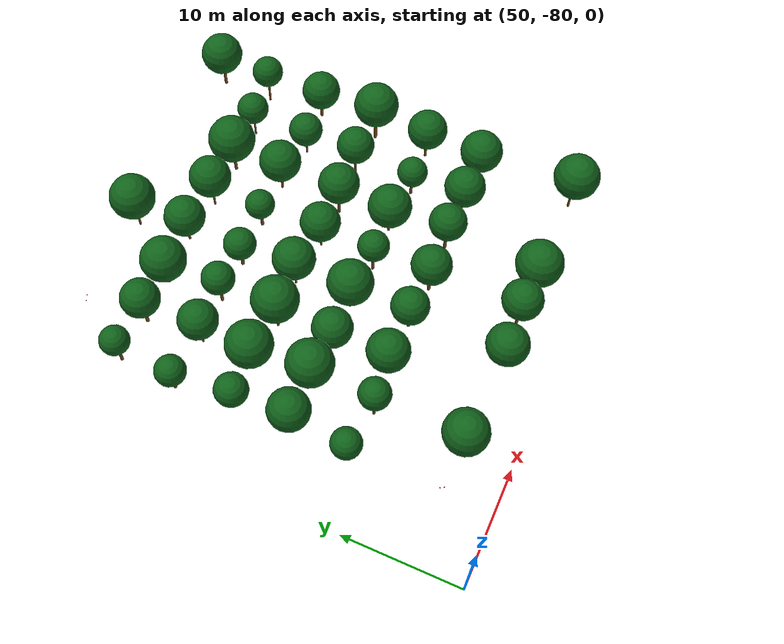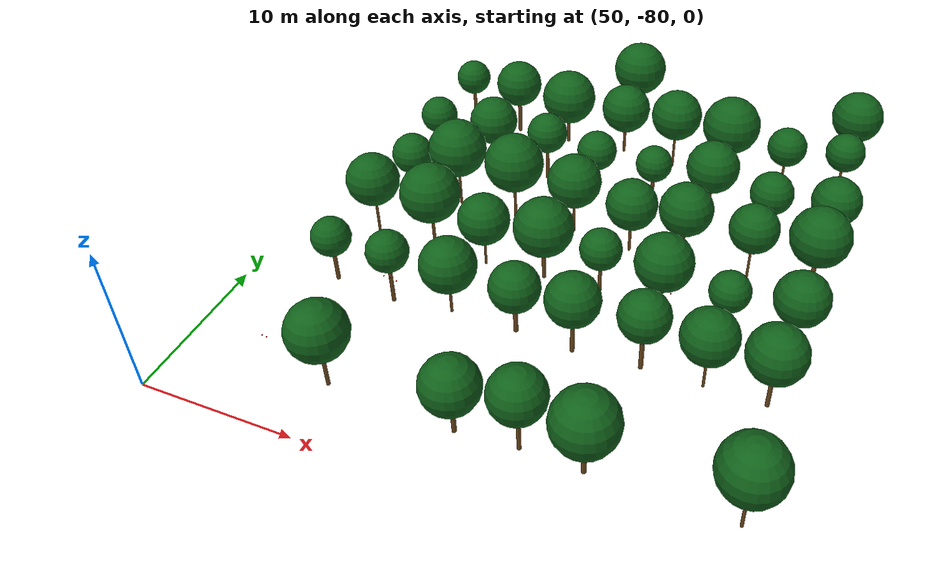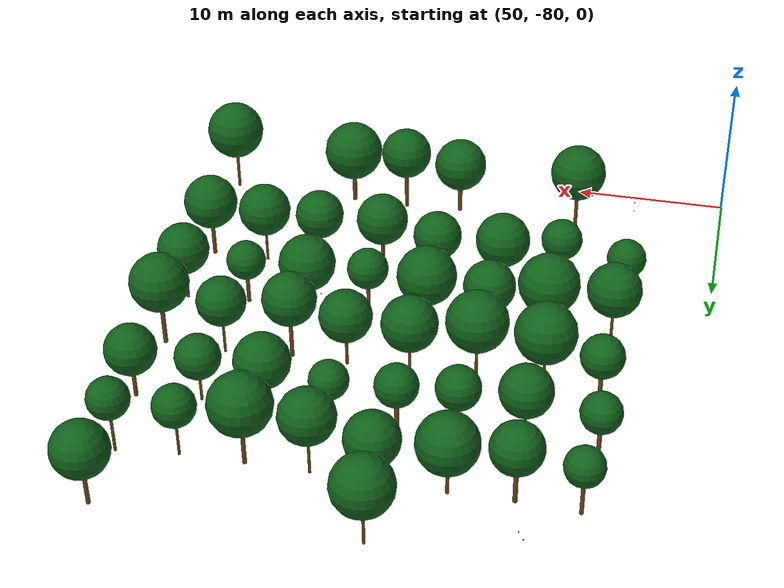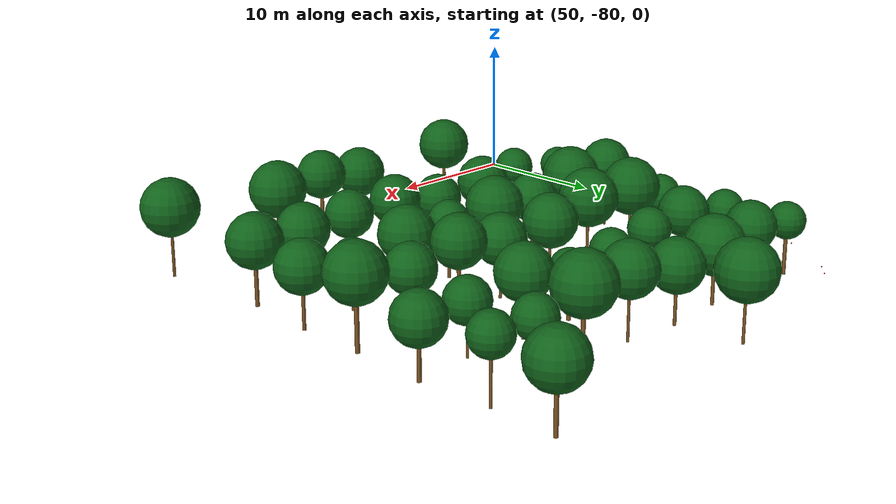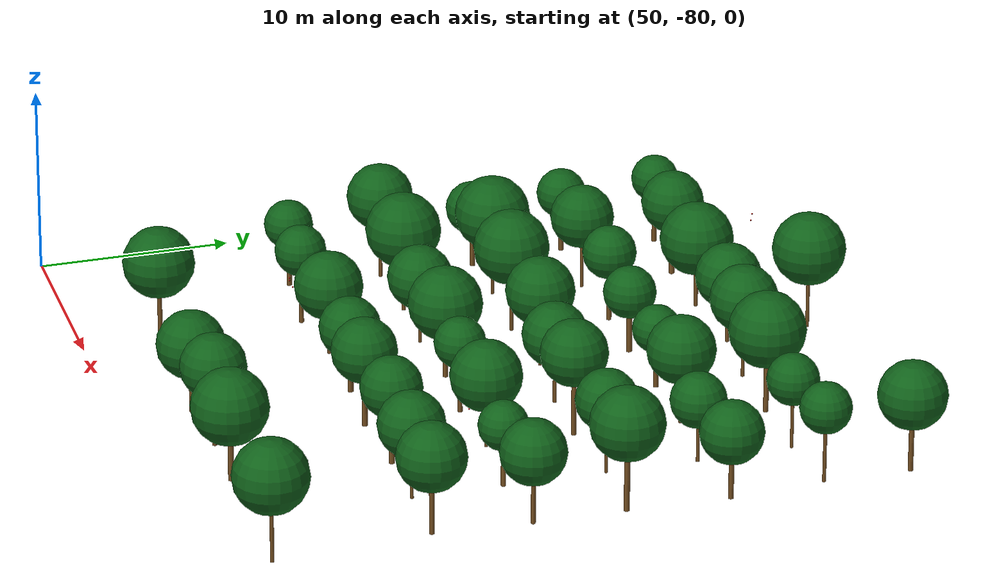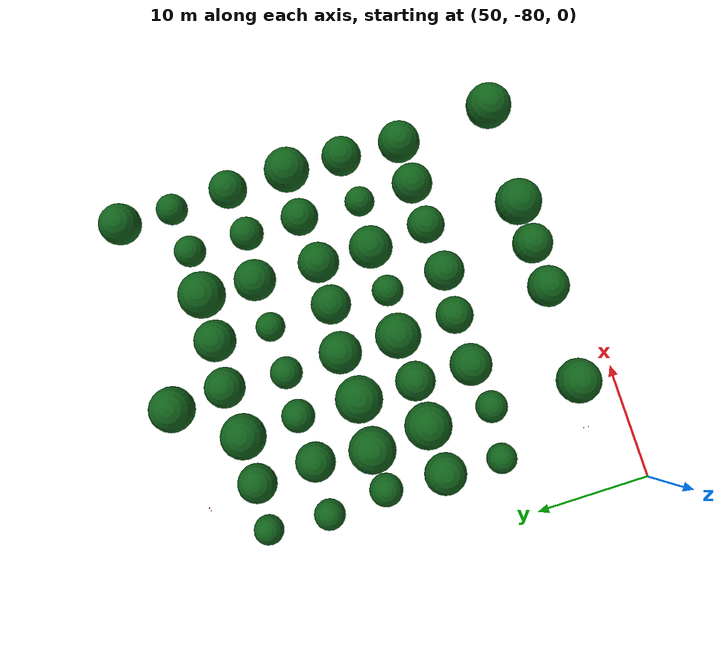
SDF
<sdf version="1.9">
 <world name="cheongsong_orchard">
  <model name="apple_tree_471">
   <static>true</static>
   <pose>59.84 -75.91 0 0 0 0</pose>
   <link name="link">
    <collision name="trunk_col">
     <pose>0 0 1.26 0 0 0</pose>
     <geometry><cylinder><radius>0.119</radius><length>2.52</length></cylinder></geometry>
    </collision>
    <visual name="trunk_vis">
     <pose>0 0 1.26 0 0 0</pose>
     <geometry><cylinder><radius>0.119</radius><length>2.52</length></cylinder></geometry>
     <material><ambient>0.35 0.22 0.08 1</ambient><diffuse>0.45 0.30 0.12 1</diffuse></material>
    </visual>
    <collision name="canopy_col">
     <pose>0 0 4.40 0 0 0</pose>
     <geometry><sphere><radius>1.87</radius></sphere></geometry>
    </collision>
    <visual name="canopy_vis">
     <pose>0 0 4.40 0 0 0</pose>
     <geometry><sphere><radius>1.87</radius></sphere></geometry>
     <material><ambient>0.04 0.28 0.06 1</ambient><diffuse>0.06 0.38 0.10 1</diffuse></material>
    </visual>
   </link>
  </model>
  <model name="apple_tree_473">
   <static>true</static>
   <pose>68.04 -76.20 0 0 0 0</pose>
   <link name="link">
    <collision name="trunk_col">
     <pose>0 0 1.01 0 0 0</pose>
     <geometry><cylinder><radius>0.143</radius><length>2.03</length></cylinder></geometry>
    </collision>
    <visual name="trunk_vis">
     <pose>0 0 1.01 0 0 0</pose>
     <geometry><cylinder><radius>0.143</radius><length>2.03</length></cylinder></geometry>
     <material><ambient>0.35 0.22 0.08 1</ambient><diffuse>0.45 0.30 0.12 1</diffuse></material>
    </visual>
    <collision name="canopy_col">
     <pose>0 0 3.80 0 0 0</pose>
     <geometry><sphere><radius>1.77</radius></sphere></geometry>
    </collision>
    <visual name="canopy_vis">
     <pose>0 0 3.80 0 0 0</pose>
     <geometry><sphere><radius>1.77</radius></sphere></geometry>
     <material><ambient>0.04 0.28 0.06 1</ambient><diffuse>0.06 0.38 0.10 1</diffuse></material>
    </visual>
   </link>
  </model>
  <model name="apple_tree_474">
   <static>true</static>
   <pose>71.81 -75.95 0 0 0 0</pose>
   <link name="link">
    <collision name="trunk_col">
     <pose>0 0 1.37 0 0 0</pose>
     <geometry><cylinder><radius>0.127</radius><length>2.73</length></cylinder></geometry>
    </collision>
    <visual name="trunk_vis">
     <pose>0 0 1.37 0 0 0</pose>
     <geometry><cylinder><radius>0.127</radius><length>2.73</length></cylinder></geometry>
     <material><ambient>0.35 0.22 0.08 1</ambient><diffuse>0.45 0.30 0.12 1</diffuse></material>
    </visual>
    <collision name="canopy_col">
     <pose>0 0 4.43 0 0 0</pose>
     <geometry><sphere><radius>1.70</radius></sphere></geometry>
    </collision>
    <visual name="canopy_vis">
     <pose>0 0 4.43 0 0 0</pose>
     <geometry><sphere><radius>1.70</radius></sphere></geometry>
     <material><ambient>0.04 0.28 0.06 1</ambient><diffuse>0.06 0.38 0.10 1</diffuse></material>
    </visual>
   </link>
  </model>
  <model name="apple_tree_475">
   <static>true</static>
   <pose>75.58 -76.04 0 0 0 0</pose>
   <link name="link">
    <collision name="trunk_col">
     <pose>0 0 1.06 0 0 0</pose>
     <geometry><cylinder><radius>0.149</radius><length>2.12</length></cylinder></geometry>
    </collision>
    <visual name="trunk_vis">
     <pose>0 0 1.06 0 0 0</pose>
     <geometry><cylinder><radius>0.149</radius><length>2.12</length></cylinder></geometry>
     <material><ambient>0.35 0.22 0.08 1</ambient><diffuse>0.45 0.30 0.12 1</diffuse></material>
    </visual>
    <collision name="canopy_col">
     <pose>0 0 4.10 0 0 0</pose>
     <geometry><sphere><radius>1.98</radius></sphere></geometry>
    </collision>
    <visual name="canopy_vis">
     <pose>0 0 4.10 0 0 0</pose>
     <geometry><sphere><radius>1.98</radius></sphere></geometry>
     <material><ambient>0.04 0.28 0.06 1</ambient><diffuse>0.06 0.38 0.10 1</diffuse></material>
    </visual>
   </link>
  </model>
  <model name="apple_tree_477">
   <static>true</static>
   <pose>84.11 -76.11 0 0 0 0</pose>
   <link name="link">
    <collision name="trunk_col">
     <pose>0 0 1.38 0 0 0</pose>
     <geometry><cylinder><radius>0.098</radius><length>2.76</length></cylinder></geometry>
    </collision>
    <visual name="trunk_vis">
     <pose>0 0 1.38 0 0 0</pose>
     <geometry><cylinder><radius>0.098</radius><length>2.76</length></cylinder></geometry>
     <material><ambient>0.35 0.22 0.08 1</ambient><diffuse>0.45 0.30 0.12 1</diffuse></material>
    </visual>
    <collision name="canopy_col">
     <pose>0 0 4.69 0 0 0</pose>
     <geometry><sphere><radius>1.93</radius></sphere></geometry>
    </collision>
    <visual name="canopy_vis">
     <pose>0 0 4.69 0 0 0</pose>
     <geometry><sphere><radius>1.93</radius></sphere></geometry>
     <material><ambient>0.04 0.28 0.06 1</ambient><diffuse>0.06 0.38 0.10 1</diffuse></material>
    </visual>
   </link>
  </model>
  <model name="apple_tree_529">
   <static>true</static>
   <pose>55.68 -68.01 0 0 0 0</pose>
   <link name="link">
    <collision name="trunk_col">
     <pose>0 0 1.13 0 0 0</pose>
     <geometry><cylinder><radius>0.132</radius><length>2.25</length></cylinder></geometry>
    </collision>
    <visual name="trunk_vis">
     <pose>0 0 1.13 0 0 0</pose>
     <geometry><cylinder><radius>0.132</radius><length>2.25</length></cylinder></geometry>
     <material><ambient>0.35 0.22 0.08 1</ambient><diffuse>0.45 0.30 0.12 1</diffuse></material>
    </visual>
    <collision name="canopy_col">
     <pose>0 0 3.53 0 0 0</pose>
     <geometry><sphere><radius>1.28</radius></sphere></geometry>
    </collision>
    <visual name="canopy_vis">
     <pose>0 0 3.53 0 0 0</pose>
     <geometry><sphere><radius>1.28</radius></sphere></geometry>
     <material><ambient>0.04 0.28 0.06 1</ambient><diffuse>0.06 0.38 0.10 1</diffuse></material>
    </visual>
   </link>
  </model>
  <model name="apple_tree_530">
   <static>true</static>
   <pose>59.97 -68.46 0 0 0 0</pose>
   <link name="link">
    <collision name="trunk_col">
     <pose>0 0 1.39 0 0 0</pose>
     <geometry><cylinder><radius>0.126</radius><length>2.78</length></cylinder></geometry>
    </collision>
    <visual name="trunk_vis">
     <pose>0 0 1.39 0 0 0</pose>
     <geometry><cylinder><radius>0.126</radius><length>2.78</length></cylinder></geometry>
     <material><ambient>0.35 0.22 0.08 1</ambient><diffuse>0.45 0.30 0.12 1</diffuse></material>
    </visual>
    <collision name="canopy_col">
     <pose>0 0 4.12 0 0 0</pose>
     <geometry><sphere><radius>1.34</radius></sphere></geometry>
    </collision>
    <visual name="canopy_vis">
     <pose>0 0 4.12 0 0 0</pose>
     <geometry><sphere><radius>1.34</radius></sphere></geometry>
     <material><ambient>0.04 0.28 0.06 1</ambient><diffuse>0.06 0.38 0.10 1</diffuse></material>
    </visual>
   </link>
  </model>
  <model name="apple_tree_531">
   <static>true</static>
   <pose>63.76 -67.96 0 0 0 0</pose>
   <link name="link">
    <collision name="trunk_col">
     <pose>0 0 1.06 0 0 0</pose>
     <geometry><cylinder><radius>0.089</radius><length>2.11</length></cylinder></geometry>
    </collision>
    <visual name="trunk_vis">
     <pose>0 0 1.06 0 0 0</pose>
     <geometry><cylinder><radius>0.089</radius><length>2.11</length></cylinder></geometry>
     <material><ambient>0.35 0.22 0.08 1</ambient><diffuse>0.45 0.30 0.12 1</diffuse></material>
    </visual>
    <collision name="canopy_col">
     <pose>0 0 3.89 0 0 0</pose>
     <geometry><sphere><radius>1.78</radius></sphere></geometry>
    </collision>
    <visual name="canopy_vis">
     <pose>0 0 3.89 0 0 0</pose>
     <geometry><sphere><radius>1.78</radius></sphere></geometry>
     <material><ambient>0.04 0.28 0.06 1</ambient><diffuse>0.06 0.38 0.10 1</diffuse></material>
    </visual>
   </link>
  </model>
  <model name="apple_tree_532">
   <static>true</static>
   <pose>68.10 -67.98 0 0 0 0</pose>
   <link name="link">
    <collision name="trunk_col">
     <pose>0 0 1.03 0 0 0</pose>
     <geometry><cylinder><radius>0.144</radius><length>2.05</length></cylinder></geometry>
    </collision>
    <visual name="trunk_vis">
     <pose>0 0 1.03 0 0 0</pose>
     <geometry><cylinder><radius>0.144</radius><length>2.05</length></cylinder></geometry>
     <material><ambient>0.35 0.22 0.08 1</ambient><diffuse>0.45 0.30 0.12 1</diffuse></material>
    </visual>
    <collision name="canopy_col">
     <pose>0 0 3.64 0 0 0</pose>
     <geometry><sphere><radius>1.59</radius></sphere></geometry>
    </collision>
    <visual name="canopy_vis">
     <pose>0 0 3.64 0 0 0</pose>
     <geometry><sphere><radius>1.59</radius></sphere></geometry>
     <material><ambient>0.04 0.28 0.06 1</ambient><diffuse>0.06 0.38 0.10 1</diffuse></material>
    </visual>
   </link>
  </model>
  <model name="apple_tree_533">
   <static>true</static>
   <pose>71.85 -68.23 0 0 0 0</pose>
   <link name="link">
    <collision name="trunk_col">
     <pose>0 0 1.27 0 0 0</pose>
     <geometry><cylinder><radius>0.135</radius><length>2.55</length></cylinder></geometry>
    </collision>
    <visual name="trunk_vis">
     <pose>0 0 1.27 0 0 0</pose>
     <geometry><cylinder><radius>0.135</radius><length>2.55</length></cylinder></geometry>
     <material><ambient>0.35 0.22 0.08 1</ambient><diffuse>0.45 0.30 0.12 1</diffuse></material>
    </visual>
    <collision name="canopy_col">
     <pose>0 0 4.24 0 0 0</pose>
     <geometry><sphere><radius>1.69</radius></sphere></geometry>
    </collision>
    <visual name="canopy_vis">
     <pose>0 0 4.24 0 0 0</pose>
     <geometry><sphere><radius>1.69</radius></sphere></geometry>
     <material><ambient>0.04 0.28 0.06 1</ambient><diffuse>0.06 0.38 0.10 1</diffuse></material>
    </visual>
   </link>
  </model>
  <model name="apple_tree_534">
   <static>true</static>
   <pose>76.03 -67.96 0 0 0 0</pose>
   <link name="link">
    <collision name="trunk_col">
     <pose>0 0 1.33 0 0 0</pose>
     <geometry><cylinder><radius>0.142</radius><length>2.66</length></cylinder></geometry>
    </collision>
    <visual name="trunk_vis">
     <pose>0 0 1.33 0 0 0</pose>
     <geometry><cylinder><radius>0.142</radius><length>2.66</length></cylinder></geometry>
     <material><ambient>0.35 0.22 0.08 1</ambient><diffuse>0.45 0.30 0.12 1</diffuse></material>
    </visual>
    <collision name="canopy_col">
     <pose>0 0 4.25 0 0 0</pose>
     <geometry><sphere><radius>1.59</radius></sphere></geometry>
    </collision>
    <visual name="canopy_vis">
     <pose>0 0 4.25 0 0 0</pose>
     <geometry><sphere><radius>1.59</radius></sphere></geometry>
     <material><ambient>0.04 0.28 0.06 1</ambient><diffuse>0.06 0.38 0.10 1</diffuse></material>
    </visual>
   </link>
  </model>
  <model name="apple_tree_535">
   <static>true</static>
   <pose>79.80 -67.96 0 0 0 0</pose>
   <link name="link">
    <collision name="trunk_col">
     <pose>0 0 1.19 0 0 0</pose>
     <geometry><cylinder><radius>0.084</radius><length>2.38</length></cylinder></geometry>
    </collision>
    <visual name="trunk_vis">
     <pose>0 0 1.19 0 0 0</pose>
     <geometry><cylinder><radius>0.084</radius><length>2.38</length></cylinder></geometry>
     <material><ambient>0.35 0.22 0.08 1</ambient><diffuse>0.45 0.30 0.12 1</diffuse></material>
    </visual>
    <collision name="canopy_col">
     <pose>0 0 4.10 0 0 0</pose>
     <geometry><sphere><radius>1.72</radius></sphere></geometry>
    </collision>
    <visual name="canopy_vis">
     <pose>0 0 4.10 0 0 0</pose>
     <geometry><sphere><radius>1.72</radius></sphere></geometry>
     <material><ambient>0.04 0.28 0.06 1</ambient><diffuse>0.06 0.38 0.10 1</diffuse></material>
    </visual>
   </link>
  </model>
  <model name="apple_tree_536">
   <static>true</static>
   <pose>83.52 -67.97 0 0 0 0</pose>
   <link name="link">
    <collision name="trunk_col">
     <pose>0 0 1.23 0 0 0</pose>
     <geometry><cylinder><radius>0.132</radius><length>2.46</length></cylinder></geometry>
    </collision>
    <visual name="trunk_vis">
     <pose>0 0 1.23 0 0 0</pose>
     <geometry><cylinder><radius>0.132</radius><length>2.46</length></cylinder></geometry>
     <material><ambient>0.35 0.22 0.08 1</ambient><diffuse>0.45 0.30 0.12 1</diffuse></material>
    </visual>
    <collision name="canopy_col">
     <pose>0 0 4.24 0 0 0</pose>
     <geometry><sphere><radius>1.78</radius></sphere></geometry>
    </collision>
    <visual name="canopy_vis">
     <pose>0 0 4.24 0 0 0</pose>
     <geometry><sphere><radius>1.78</radius></sphere></geometry>
     <material><ambient>0.04 0.28 0.06 1</ambient><diffuse>0.06 0.38 0.10 1</diffuse></material>
    </visual>
   </link>
  </model>
  <model name="apple_tree_585">
   <static>true</static>
   <pose>55.99 -63.16 0 0 0 0</pose>
   <link name="link">
    <collision name="trunk_col">
     <pose>0 0 1.44 0 0 0</pose>
     <geometry><cylinder><radius>0.090</radius><length>2.89</length></cylinder></geometry>
    </collision>
    <visual name="trunk_vis">
     <pose>0 0 1.44 0 0 0</pose>
     <geometry><cylinder><radius>0.090</radius><length>2.89</length></cylinder></geometry>
     <material><ambient>0.35 0.22 0.08 1</ambient><diffuse>0.45 0.30 0.12 1</diffuse></material>
    </visual>
    <collision name="canopy_col">
     <pose>0 0 4.63 0 0 0</pose>
     <geometry><sphere><radius>1.74</radius></sphere></geometry>
    </collision>
    <visual name="canopy_vis">
     <pose>0 0 4.63 0 0 0</pose>
     <geometry><sphere><radius>1.74</radius></sphere></geometry>
     <material><ambient>0.04 0.28 0.06 1</ambient><diffuse>0.06 0.38 0.10 1</diffuse></material>
    </visual>
   </link>
  </model>
  <model name="apple_tree_586">
   <static>true</static>
   <pose>60.06 -63.01 0 0 0 0</pose>
   <link name="link">
    <collision name="trunk_col">
     <pose>0 0 1.33 0 0 0</pose>
     <geometry><cylinder><radius>0.106</radius><length>2.66</length></cylinder></geometry>
    </collision>
    <visual name="trunk_vis">
     <pose>0 0 1.33 0 0 0</pose>
     <geometry><cylinder><radius>0.106</radius><length>2.66</length></cylinder></geometry>
     <material><ambient>0.35 0.22 0.08 1</ambient><diffuse>0.45 0.30 0.12 1</diffuse></material>
    </visual>
    <collision name="canopy_col">
     <pose>0 0 4.62 0 0 0</pose>
     <geometry><sphere><radius>1.96</radius></sphere></geometry>
    </collision>
    <visual name="canopy_vis">
     <pose>0 0 4.62 0 0 0</pose>
     <geometry><sphere><radius>1.96</radius></sphere></geometry>
     <material><ambient>0.04 0.28 0.06 1</ambient><diffuse>0.06 0.38 0.10 1</diffuse></material>
    </visual>
   </link>
  </model>
  <model name="apple_tree_587">
   <static>true</static>
   <pose>63.84 -63.16 0 0 0 0</pose>
   <link name="link">
    <collision name="trunk_col">
     <pose>0 0 1.04 0 0 0</pose>
     <geometry><cylinder><radius>0.080</radius><length>2.07</length></cylinder></geometry>
    </collision>
    <visual name="trunk_vis">
     <pose>0 0 1.04 0 0 0</pose>
     <geometry><cylinder><radius>0.080</radius><length>2.07</length></cylinder></geometry>
     <material><ambient>0.35 0.22 0.08 1</ambient><diffuse>0.45 0.30 0.12 1</diffuse></material>
    </visual>
    <collision name="canopy_col">
     <pose>0 0 3.75 0 0 0</pose>
     <geometry><sphere><radius>1.68</radius></sphere></geometry>
    </collision>
    <visual name="canopy_vis">
     <pose>0 0 3.75 0 0 0</pose>
     <geometry><sphere><radius>1.68</radius></sphere></geometry>
     <material><ambient>0.04 0.28 0.06 1</ambient><diffuse>0.06 0.38 0.10 1</diffuse></material>
    </visual>
   </link>
  </model>
  <model name="apple_tree_588">
   <static>true</static>
   <pose>67.83 -62.92 0 0 0 0</pose>
   <link name="link">
    <collision name="trunk_col">
     <pose>0 0 1.12 0 0 0</pose>
     <geometry><cylinder><radius>0.132</radius><length>2.25</length></cylinder></geometry>
    </collision>
    <visual name="trunk_vis">
     <pose>0 0 1.12 0 0 0</pose>
     <geometry><cylinder><radius>0.132</radius><length>2.25</length></cylinder></geometry>
     <material><ambient>0.35 0.22 0.08 1</ambient><diffuse>0.45 0.30 0.12 1</diffuse></material>
    </visual>
    <collision name="canopy_col">
     <pose>0 0 4.17 0 0 0</pose>
     <geometry><sphere><radius>1.92</radius></sphere></geometry>
    </collision>
    <visual name="canopy_vis">
     <pose>0 0 4.17 0 0 0</pose>
     <geometry><sphere><radius>1.92</radius></sphere></geometry>
     <material><ambient>0.04 0.28 0.06 1</ambient><diffuse>0.06 0.38 0.10 1</diffuse></material>
    </visual>
   </link>
  </model>
  <model name="apple_tree_589">
   <static>true</static>
   <pose>71.72 -63.24 0 0 0 0</pose>
   <link name="link">
    <collision name="trunk_col">
     <pose>0 0 1.29 0 0 0</pose>
     <geometry><cylinder><radius>0.116</radius><length>2.58</length></cylinder></geometry>
    </collision>
    <visual name="trunk_vis">
     <pose>0 0 1.29 0 0 0</pose>
     <geometry><cylinder><radius>0.116</radius><length>2.58</length></cylinder></geometry>
     <material><ambient>0.35 0.22 0.08 1</ambient><diffuse>0.45 0.30 0.12 1</diffuse></material>
    </visual>
    <collision name="canopy_col">
     <pose>0 0 3.91 0 0 0</pose>
     <geometry><sphere><radius>1.33</radius></sphere></geometry>
    </collision>
    <visual name="canopy_vis">
     <pose>0 0 3.91 0 0 0</pose>
     <geometry><sphere><radius>1.33</radius></sphere></geometry>
     <material><ambient>0.04 0.28 0.06 1</ambient><diffuse>0.06 0.38 0.10 1</diffuse></material>
    </visual>
   </link>
  </model>
  <model name="apple_tree_590">
   <static>true</static>
   <pose>75.64 -62.99 0 0 0 0</pose>
   <link name="link">
    <collision name="trunk_col">
     <pose>0 0 1.07 0 0 0</pose>
     <geometry><cylinder><radius>0.093</radius><length>2.14</length></cylinder></geometry>
    </collision>
    <visual name="trunk_vis">
     <pose>0 0 1.07 0 0 0</pose>
     <geometry><cylinder><radius>0.093</radius><length>2.14</length></cylinder></geometry>
     <material><ambient>0.35 0.22 0.08 1</ambient><diffuse>0.45 0.30 0.12 1</diffuse></material>
    </visual>
    <collision name="canopy_col">
     <pose>0 0 3.98 0 0 0</pose>
     <geometry><sphere><radius>1.84</radius></sphere></geometry>
    </collision>
    <visual name="canopy_vis">
     <pose>0 0 3.98 0 0 0</pose>
     <geometry><sphere><radius>1.84</radius></sphere></geometry>
     <material><ambient>0.04 0.28 0.06 1</ambient><diffuse>0.06 0.38 0.10 1</diffuse></material>
    </visual>
   </link>
  </model>
  <model name="apple_tree_591">
   <static>true</static>
   <pose>79.80 -63.29 0 0 0 0</pose>
   <link name="link">
    <collision name="trunk_col">
     <pose>0 0 1.04 0 0 0</pose>
     <geometry><cylinder><radius>0.126</radius><length>2.08</length></cylinder></geometry>
    </collision>
    <visual name="trunk_vis">
     <pose>0 0 1.04 0 0 0</pose>
     <geometry><cylinder><radius>0.126</radius><length>2.08</length></cylinder></geometry>
     <material><ambient>0.35 0.22 0.08 1</ambient><diffuse>0.45 0.30 0.12 1</diffuse></material>
    </visual>
    <collision name="canopy_col">
     <pose>0 0 3.36 0 0 0</pose>
     <geometry><sphere><radius>1.28</radius></sphere></geometry>
    </collision>
    <visual name="canopy_vis">
     <pose>0 0 3.36 0 0 0</pose>
     <geometry><sphere><radius>1.28</radius></sphere></geometry>
     <material><ambient>0.04 0.28 0.06 1</ambient><diffuse>0.06 0.38 0.10 1</diffuse></material>
    </visual>
   </link>
  </model>
  <model name="apple_tree_592">
   <static>true</static>
   <pose>83.88 -62.95 0 0 0 0</pose>
   <link name="link">
    <collision name="trunk_col">
     <pose>0 0 1.13 0 0 0</pose>
     <geometry><cylinder><radius>0.112</radius><length>2.26</length></cylinder></geometry>
    </collision>
    <visual name="trunk_vis">
     <pose>0 0 1.13 0 0 0</pose>
     <geometry><cylinder><radius>0.112</radius><length>2.26</length></cylinder></geometry>
     <material><ambient>0.35 0.22 0.08 1</ambient><diffuse>0.45 0.30 0.12 1</diffuse></material>
    </visual>
    <collision name="canopy_col">
     <pose>0 0 3.95 0 0 0</pose>
     <geometry><sphere><radius>1.69</radius></sphere></geometry>
    </collision>
    <visual name="canopy_vis">
     <pose>0 0 3.95 0 0 0</pose>
     <geometry><sphere><radius>1.69</radius></sphere></geometry>
     <material><ambient>0.04 0.28 0.06 1</ambient><diffuse>0.06 0.38 0.10 1</diffuse></material>
    </visual>
   </link>
  </model>
  <model name="apple_tree_642">
   <static>true</static>
   <pose>56.08 -58.18 0 0 0 0</pose>
   <link name="link">
    <collision name="trunk_col">
     <pose>0 0 0.98 0 0 0</pose>
     <geometry><cylinder><radius>0.138</radius><length>1.96</length></cylinder></geometry>
    </collision>
    <visual name="trunk_vis">
     <pose>0 0 0.98 0 0 0</pose>
     <geometry><cylinder><radius>0.138</radius><length>1.96</length></cylinder></geometry>
     <material><ambient>0.35 0.22 0.08 1</ambient><diffuse>0.45 0.30 0.12 1</diffuse></material>
    </visual>
    <collision name="canopy_col">
     <pose>0 0 3.36 0 0 0</pose>
     <geometry><sphere><radius>1.40</radius></sphere></geometry>
    </collision>
    <visual name="canopy_vis">
     <pose>0 0 3.36 0 0 0</pose>
     <geometry><sphere><radius>1.40</radius></sphere></geometry>
     <material><ambient>0.04 0.28 0.06 1</ambient><diffuse>0.06 0.38 0.10 1</diffuse></material>
    </visual>
   </link>
  </model>
  <model name="apple_tree_643">
   <static>true</static>
   <pose>59.57 -58.09 0 0 0 0</pose>
   <link name="link">
    <collision name="trunk_col">
     <pose>0 0 1.38 0 0 0</pose>
     <geometry><cylinder><radius>0.085</radius><length>2.75</length></cylinder></geometry>
    </collision>
    <visual name="trunk_vis">
     <pose>0 0 1.38 0 0 0</pose>
     <geometry><cylinder><radius>0.085</radius><length>2.75</length></cylinder></geometry>
     <material><ambient>0.35 0.22 0.08 1</ambient><diffuse>0.45 0.30 0.12 1</diffuse></material>
    </visual>
    <collision name="canopy_col">
     <pose>0 0 4.70 0 0 0</pose>
     <geometry><sphere><radius>1.95</radius></sphere></geometry>
    </collision>
    <visual name="canopy_vis">
     <pose>0 0 4.70 0 0 0</pose>
     <geometry><sphere><radius>1.95</radius></sphere></geometry>
     <material><ambient>0.04 0.28 0.06 1</ambient><diffuse>0.06 0.38 0.10 1</diffuse></material>
    </visual>
   </link>
  </model>
  <model name="apple_tree_644">
   <static>true</static>
   <pose>63.80 -58.28 0 0 0 0</pose>
   <link name="link">
    <collision name="trunk_col">
     <pose>0 0 1.41 0 0 0</pose>
     <geometry><cylinder><radius>0.099</radius><length>2.82</length></cylinder></geometry>
    </collision>
    <visual name="trunk_vis">
     <pose>0 0 1.41 0 0 0</pose>
     <geometry><cylinder><radius>0.099</radius><length>2.82</length></cylinder></geometry>
     <material><ambient>0.35 0.22 0.08 1</ambient><diffuse>0.45 0.30 0.12 1</diffuse></material>
    </visual>
    <collision name="canopy_col">
     <pose>0 0 4.78 0 0 0</pose>
     <geometry><sphere><radius>1.96</radius></sphere></geometry>
    </collision>
    <visual name="canopy_vis">
     <pose>0 0 4.78 0 0 0</pose>
     <geometry><sphere><radius>1.96</radius></sphere></geometry>
     <material><ambient>0.04 0.28 0.06 1</ambient><diffuse>0.06 0.38 0.10 1</diffuse></material>
    </visual>
   </link>
  </model>
  <model name="apple_tree_645">
   <static>true</static>
   <pose>67.92 -57.94 0 0 0 0</pose>
   <link name="link">
    <collision name="trunk_col">
     <pose>0 0 1.22 0 0 0</pose>
     <geometry><cylinder><radius>0.094</radius><length>2.44</length></cylinder></geometry>
    </collision>
    <visual name="trunk_vis">
     <pose>0 0 1.22 0 0 0</pose>
     <geometry><cylinder><radius>0.094</radius><length>2.44</length></cylinder></geometry>
     <material><ambient>0.35 0.22 0.08 1</ambient><diffuse>0.45 0.30 0.12 1</diffuse></material>
    </visual>
    <collision name="canopy_col">
     <pose>0 0 4.22 0 0 0</pose>
     <geometry><sphere><radius>1.79</radius></sphere></geometry>
    </collision>
    <visual name="canopy_vis">
     <pose>0 0 4.22 0 0 0</pose>
     <geometry><sphere><radius>1.79</radius></sphere></geometry>
     <material><ambient>0.04 0.28 0.06 1</ambient><diffuse>0.06 0.38 0.10 1</diffuse></material>
    </visual>
   </link>
  </model>
  <model name="apple_tree_646">
   <static>true</static>
   <pose>72.03 -58.37 0 0 0 0</pose>
   <link name="link">
    <collision name="trunk_col">
     <pose>0 0 1.07 0 0 0</pose>
     <geometry><cylinder><radius>0.097</radius><length>2.15</length></cylinder></geometry>
    </collision>
    <visual name="trunk_vis">
     <pose>0 0 1.07 0 0 0</pose>
     <geometry><cylinder><radius>0.097</radius><length>2.15</length></cylinder></geometry>
     <material><ambient>0.35 0.22 0.08 1</ambient><diffuse>0.45 0.30 0.12 1</diffuse></material>
    </visual>
    <collision name="canopy_col">
     <pose>0 0 3.84 0 0 0</pose>
     <geometry><sphere><radius>1.69</radius></sphere></geometry>
    </collision>
    <visual name="canopy_vis">
     <pose>0 0 3.84 0 0 0</pose>
     <geometry><sphere><radius>1.69</radius></sphere></geometry>
     <material><ambient>0.04 0.28 0.06 1</ambient><diffuse>0.06 0.38 0.10 1</diffuse></material>
    </visual>
   </link>
  </model>
  <model name="apple_tree_647">
   <static>true</static>
   <pose>75.60 -58.43 0 0 0 0</pose>
   <link name="link">
    <collision name="trunk_col">
     <pose>0 0 1.42 0 0 0</pose>
     <geometry><cylinder><radius>0.127</radius><length>2.85</length></cylinder></geometry>
    </collision>
    <visual name="trunk_vis">
     <pose>0 0 1.42 0 0 0</pose>
     <geometry><cylinder><radius>0.127</radius><length>2.85</length></cylinder></geometry>
     <material><ambient>0.35 0.22 0.08 1</ambient><diffuse>0.45 0.30 0.12 1</diffuse></material>
    </visual>
    <collision name="canopy_col">
     <pose>0 0 4.58 0 0 0</pose>
     <geometry><sphere><radius>1.73</radius></sphere></geometry>
    </collision>
    <visual name="canopy_vis">
     <pose>0 0 4.58 0 0 0</pose>
     <geometry><sphere><radius>1.73</radius></sphere></geometry>
     <material><ambient>0.04 0.28 0.06 1</ambient><diffuse>0.06 0.38 0.10 1</diffuse></material>
    </visual>
   </link>
  </model>
  <model name="apple_tree_648">
   <static>true</static>
   <pose>79.88 -58.03 0 0 0 0</pose>
   <link name="link">
    <collision name="trunk_col">
     <pose>0 0 1.24 0 0 0</pose>
     <geometry><cylinder><radius>0.083</radius><length>2.48</length></cylinder></geometry>
    </collision>
    <visual name="trunk_vis">
     <pose>0 0 1.24 0 0 0</pose>
     <geometry><cylinder><radius>0.083</radius><length>2.48</length></cylinder></geometry>
     <material><ambient>0.35 0.22 0.08 1</ambient><diffuse>0.45 0.30 0.12 1</diffuse></material>
    </visual>
    <collision name="canopy_col">
     <pose>0 0 4.06 0 0 0</pose>
     <geometry><sphere><radius>1.59</radius></sphere></geometry>
    </collision>
    <visual name="canopy_vis">
     <pose>0 0 4.06 0 0 0</pose>
     <geometry><sphere><radius>1.59</radius></sphere></geometry>
     <material><ambient>0.04 0.28 0.06 1</ambient><diffuse>0.06 0.38 0.10 1</diffuse></material>
    </visual>
   </link>
  </model>
  <model name="apple_tree_649">
   <static>true</static>
   <pose>83.88 -58.19 0 0 0 0</pose>
   <link name="link">
    <collision name="trunk_col">
     <pose>0 0 1.46 0 0 0</pose>
     <geometry><cylinder><radius>0.143</radius><length>2.91</length></cylinder></geometry>
    </collision>
    <visual name="trunk_vis">
     <pose>0 0 1.46 0 0 0</pose>
     <geometry><cylinder><radius>0.143</radius><length>2.91</length></cylinder></geometry>
     <material><ambient>0.35 0.22 0.08 1</ambient><diffuse>0.45 0.30 0.12 1</diffuse></material>
    </visual>
    <collision name="canopy_col">
     <pose>0 0 4.81 0 0 0</pose>
     <geometry><sphere><radius>1.90</radius></sphere></geometry>
    </collision>
    <visual name="canopy_vis">
     <pose>0 0 4.81 0 0 0</pose>
     <geometry><sphere><radius>1.90</radius></sphere></geometry>
     <material><ambient>0.04 0.28 0.06 1</ambient><diffuse>0.06 0.38 0.10 1</diffuse></material>
    </visual>
   </link>
  </model>
  <model name="apple_tree_701">
   <static>true</static>
   <pose>55.58 -53.18 0 0 0 0</pose>
   <link name="link">
    <collision name="trunk_col">
     <pose>0 0 1.01 0 0 0</pose>
     <geometry><cylinder><radius>0.138</radius><length>2.02</length></cylinder></geometry>
    </collision>
    <visual name="trunk_vis">
     <pose>0 0 1.01 0 0 0</pose>
     <geometry><cylinder><radius>0.138</radius><length>2.02</length></cylinder></geometry>
     <material><ambient>0.35 0.22 0.08 1</ambient><diffuse>0.45 0.30 0.12 1</diffuse></material>
    </visual>
    <collision name="canopy_col">
     <pose>0 0 3.32 0 0 0</pose>
     <geometry><sphere><radius>1.30</radius></sphere></geometry>
    </collision>
    <visual name="canopy_vis">
     <pose>0 0 3.32 0 0 0</pose>
     <geometry><sphere><radius>1.30</radius></sphere></geometry>
     <material><ambient>0.04 0.28 0.06 1</ambient><diffuse>0.06 0.38 0.10 1</diffuse></material>
    </visual>
   </link>
  </model>
  <model name="apple_tree_702">
   <static>true</static>
   <pose>60.03 -53.37 0 0 0 0</pose>
   <link name="link">
    <collision name="trunk_col">
     <pose>0 0 1.21 0 0 0</pose>
     <geometry><cylinder><radius>0.087</radius><length>2.42</length></cylinder></geometry>
    </collision>
    <visual name="trunk_vis">
     <pose>0 0 1.21 0 0 0</pose>
     <geometry><cylinder><radius>0.087</radius><length>2.42</length></cylinder></geometry>
     <material><ambient>0.35 0.22 0.08 1</ambient><diffuse>0.45 0.30 0.12 1</diffuse></material>
    </visual>
    <collision name="canopy_col">
     <pose>0 0 4.08 0 0 0</pose>
     <geometry><sphere><radius>1.66</radius></sphere></geometry>
    </collision>
    <visual name="canopy_vis">
     <pose>0 0 4.08 0 0 0</pose>
     <geometry><sphere><radius>1.66</radius></sphere></geometry>
     <material><ambient>0.04 0.28 0.06 1</ambient><diffuse>0.06 0.38 0.10 1</diffuse></material>
    </visual>
   </link>
  </model>
  <model name="apple_tree_703">
   <static>true</static>
   <pose>64.01 -53.09 0 0 0 0</pose>
   <link name="link">
    <collision name="trunk_col">
     <pose>0 0 1.23 0 0 0</pose>
     <geometry><cylinder><radius>0.129</radius><length>2.46</length></cylinder></geometry>
    </collision>
    <visual name="trunk_vis">
     <pose>0 0 1.23 0 0 0</pose>
     <geometry><cylinder><radius>0.129</radius><length>2.46</length></cylinder></geometry>
     <material><ambient>0.35 0.22 0.08 1</ambient><diffuse>0.45 0.30 0.12 1</diffuse></material>
    </visual>
    <collision name="canopy_col">
     <pose>0 0 3.87 0 0 0</pose>
     <geometry><sphere><radius>1.40</radius></sphere></geometry>
    </collision>
    <visual name="canopy_vis">
     <pose>0 0 3.87 0 0 0</pose>
     <geometry><sphere><radius>1.40</radius></sphere></geometry>
     <material><ambient>0.04 0.28 0.06 1</ambient><diffuse>0.06 0.38 0.10 1</diffuse></material>
    </visual>
   </link>
  </model>
  <model name="apple_tree_704">
   <static>true</static>
   <pose>67.73 -53.13 0 0 0 0</pose>
   <link name="link">
    <collision name="trunk_col">
     <pose>0 0 1.01 0 0 0</pose>
     <geometry><cylinder><radius>0.145</radius><length>2.02</length></cylinder></geometry>
    </collision>
    <visual name="trunk_vis">
     <pose>0 0 1.01 0 0 0</pose>
     <geometry><cylinder><radius>0.145</radius><length>2.02</length></cylinder></geometry>
     <material><ambient>0.35 0.22 0.08 1</ambient><diffuse>0.45 0.30 0.12 1</diffuse></material>
    </visual>
    <collision name="canopy_col">
     <pose>0 0 3.39 0 0 0</pose>
     <geometry><sphere><radius>1.37</radius></sphere></geometry>
    </collision>
    <visual name="canopy_vis">
     <pose>0 0 3.39 0 0 0</pose>
     <geometry><sphere><radius>1.37</radius></sphere></geometry>
     <material><ambient>0.04 0.28 0.06 1</ambient><diffuse>0.06 0.38 0.10 1</diffuse></material>
    </visual>
   </link>
  </model>
  <model name="apple_tree_705">
   <static>true</static>
   <pose>71.81 -52.96 0 0 0 0</pose>
   <link name="link">
    <collision name="trunk_col">
     <pose>0 0 1.01 0 0 0</pose>
     <geometry><cylinder><radius>0.136</radius><length>2.03</length></cylinder></geometry>
    </collision>
    <visual name="trunk_vis">
     <pose>0 0 1.01 0 0 0</pose>
     <geometry><cylinder><radius>0.136</radius><length>2.03</length></cylinder></geometry>
     <material><ambient>0.35 0.22 0.08 1</ambient><diffuse>0.45 0.30 0.12 1</diffuse></material>
    </visual>
    <collision name="canopy_col">
     <pose>0 0 3.28 0 0 0</pose>
     <geometry><sphere><radius>1.25</radius></sphere></geometry>
    </collision>
    <visual name="canopy_vis">
     <pose>0 0 3.28 0 0 0</pose>
     <geometry><sphere><radius>1.25</radius></sphere></geometry>
     <material><ambient>0.04 0.28 0.06 1</ambient><diffuse>0.06 0.38 0.10 1</diffuse></material>
    </visual>
   </link>
  </model>
  <model name="apple_tree_706">
   <static>true</static>
   <pose>75.85 -52.93 0 0 0 0</pose>
   <link name="link">
    <collision name="trunk_col">
     <pose>0 0 1.18 0 0 0</pose>
     <geometry><cylinder><radius>0.106</radius><length>2.36</length></cylinder></geometry>
    </collision>
    <visual name="trunk_vis">
     <pose>0 0 1.18 0 0 0</pose>
     <geometry><cylinder><radius>0.106</radius><length>2.36</length></cylinder></geometry>
     <material><ambient>0.35 0.22 0.08 1</ambient><diffuse>0.45 0.30 0.12 1</diffuse></material>
    </visual>
    <collision name="canopy_col">
     <pose>0 0 4.12 0 0 0</pose>
     <geometry><sphere><radius>1.77</radius></sphere></geometry>
    </collision>
    <visual name="canopy_vis">
     <pose>0 0 4.12 0 0 0</pose>
     <geometry><sphere><radius>1.77</radius></sphere></geometry>
     <material><ambient>0.04 0.28 0.06 1</ambient><diffuse>0.06 0.38 0.10 1</diffuse></material>
    </visual>
   </link>
  </model>
  <model name="apple_tree_707">
   <static>true</static>
   <pose>80.00 -53.33 0 0 0 0</pose>
   <link name="link">
    <collision name="trunk_col">
     <pose>0 0 0.99 0 0 0</pose>
     <geometry><cylinder><radius>0.085</radius><length>1.99</length></cylinder></geometry>
    </collision>
    <visual name="trunk_vis">
     <pose>0 0 0.99 0 0 0</pose>
     <geometry><cylinder><radius>0.085</radius><length>1.99</length></cylinder></geometry>
     <material><ambient>0.35 0.22 0.08 1</ambient><diffuse>0.45 0.30 0.12 1</diffuse></material>
    </visual>
    <collision name="canopy_col">
     <pose>0 0 3.43 0 0 0</pose>
     <geometry><sphere><radius>1.44</radius></sphere></geometry>
    </collision>
    <visual name="canopy_vis">
     <pose>0 0 3.43 0 0 0</pose>
     <geometry><sphere><radius>1.44</radius></sphere></geometry>
     <material><ambient>0.04 0.28 0.06 1</ambient><diffuse>0.06 0.38 0.10 1</diffuse></material>
    </visual>
   </link>
  </model>
  <model name="apple_tree_708">
   <static>true</static>
   <pose>84.08 -52.91 0 0 0 0</pose>
   <link name="link">
    <collision name="trunk_col">
     <pose>0 0 1.02 0 0 0</pose>
     <geometry><cylinder><radius>0.131</radius><length>2.04</length></cylinder></geometry>
    </collision>
    <visual name="trunk_vis">
     <pose>0 0 1.02 0 0 0</pose>
     <geometry><cylinder><radius>0.131</radius><length>2.04</length></cylinder></geometry>
     <material><ambient>0.35 0.22 0.08 1</ambient><diffuse>0.45 0.30 0.12 1</diffuse></material>
    </visual>
    <collision name="canopy_col">
     <pose>0 0 3.67 0 0 0</pose>
     <geometry><sphere><radius>1.63</radius></sphere></geometry>
    </collision>
    <visual name="canopy_vis">
     <pose>0 0 3.67 0 0 0</pose>
     <geometry><sphere><radius>1.63</radius></sphere></geometry>
     <material><ambient>0.04 0.28 0.06 1</ambient><diffuse>0.06 0.38 0.10 1</diffuse></material>
    </visual>
   </link>
  </model>
  <model name="apple_tree_760">
   <static>true</static>
   <pose>55.95 -48.15 0 0 0 0</pose>
   <link name="link">
    <collision name="trunk_col">
     <pose>0 0 1.23 0 0 0</pose>
     <geometry><cylinder><radius>0.124</radius><length>2.45</length></cylinder></geometry>
    </collision>
    <visual name="trunk_vis">
     <pose>0 0 1.23 0 0 0</pose>
     <geometry><cylinder><radius>0.124</radius><length>2.45</length></cylinder></geometry>
     <material><ambient>0.35 0.22 0.08 1</ambient><diffuse>0.45 0.30 0.12 1</diffuse></material>
    </visual>
    <collision name="canopy_col">
     <pose>0 0 3.69 0 0 0</pose>
     <geometry><sphere><radius>1.24</radius></sphere></geometry>
    </collision>
    <visual name="canopy_vis">
     <pose>0 0 3.69 0 0 0</pose>
     <geometry><sphere><radius>1.24</radius></sphere></geometry>
     <material><ambient>0.04 0.28 0.06 1</ambient><diffuse>0.06 0.38 0.10 1</diffuse></material>
    </visual>
   </link>
  </model>
  <model name="apple_tree_761">
   <static>true</static>
   <pose>59.81 -48.38 0 0 0 0</pose>
   <link name="link">
    <collision name="trunk_col">
     <pose>0 0 1.26 0 0 0</pose>
     <geometry><cylinder><radius>0.143</radius><length>2.52</length></cylinder></geometry>
    </collision>
    <visual name="trunk_vis">
     <pose>0 0 1.26 0 0 0</pose>
     <geometry><cylinder><radius>0.143</radius><length>2.52</length></cylinder></geometry>
     <material><ambient>0.35 0.22 0.08 1</ambient><diffuse>0.45 0.30 0.12 1</diffuse></material>
    </visual>
    <collision name="canopy_col">
     <pose>0 0 4.16 0 0 0</pose>
     <geometry><sphere><radius>1.64</radius></sphere></geometry>
    </collision>
    <visual name="canopy_vis">
     <pose>0 0 4.16 0 0 0</pose>
     <geometry><sphere><radius>1.64</radius></sphere></geometry>
     <material><ambient>0.04 0.28 0.06 1</ambient><diffuse>0.06 0.38 0.10 1</diffuse></material>
    </visual>
   </link>
  </model>
  <model name="apple_tree_762">
   <static>true</static>
   <pose>63.75 -48.30 0 0 0 0</pose>
   <link name="link">
    <collision name="trunk_col">
     <pose>0 0 0.99 0 0 0</pose>
     <geometry><cylinder><radius>0.112</radius><length>1.97</length></cylinder></geometry>
    </collision>
    <visual name="trunk_vis">
     <pose>0 0 0.99 0 0 0</pose>
     <geometry><cylinder><radius>0.112</radius><length>1.97</length></cylinder></geometry>
     <material><ambient>0.35 0.22 0.08 1</ambient><diffuse>0.45 0.30 0.12 1</diffuse></material>
    </visual>
    <collision name="canopy_col">
     <pose>0 0 3.89 0 0 0</pose>
     <geometry><sphere><radius>1.92</radius></sphere></geometry>
    </collision>
    <visual name="canopy_vis">
     <pose>0 0 3.89 0 0 0</pose>
     <geometry><sphere><radius>1.92</radius></sphere></geometry>
     <material><ambient>0.04 0.28 0.06 1</ambient><diffuse>0.06 0.38 0.10 1</diffuse></material>
    </visual>
   </link>
  </model>
  <model name="apple_tree_763">
   <static>true</static>
   <pose>68.05 -47.96 0 0 0 0</pose>
   <link name="link">
    <collision name="trunk_col">
     <pose>0 0 1.02 0 0 0</pose>
     <geometry><cylinder><radius>0.103</radius><length>2.04</length></cylinder></geometry>
    </collision>
    <visual name="trunk_vis">
     <pose>0 0 1.02 0 0 0</pose>
     <geometry><cylinder><radius>0.103</radius><length>2.04</length></cylinder></geometry>
     <material><ambient>0.35 0.22 0.08 1</ambient><diffuse>0.45 0.30 0.12 1</diffuse></material>
    </visual>
    <collision name="canopy_col">
     <pose>0 0 3.76 0 0 0</pose>
     <geometry><sphere><radius>1.72</radius></sphere></geometry>
    </collision>
    <visual name="canopy_vis">
     <pose>0 0 3.76 0 0 0</pose>
     <geometry><sphere><radius>1.72</radius></sphere></geometry>
     <material><ambient>0.04 0.28 0.06 1</ambient><diffuse>0.06 0.38 0.10 1</diffuse></material>
    </visual>
   </link>
  </model>
  <model name="apple_tree_764">
   <static>true</static>
   <pose>71.94 -48.39 0 0 0 0</pose>
   <link name="link">
    <collision name="trunk_col">
     <pose>0 0 1.33 0 0 0</pose>
     <geometry><cylinder><radius>0.086</radius><length>2.66</length></cylinder></geometry>
    </collision>
    <visual name="trunk_vis">
     <pose>0 0 1.33 0 0 0</pose>
     <geometry><cylinder><radius>0.086</radius><length>2.66</length></cylinder></geometry>
     <material><ambient>0.35 0.22 0.08 1</ambient><diffuse>0.45 0.30 0.12 1</diffuse></material>
    </visual>
    <collision name="canopy_col">
     <pose>0 0 4.43 0 0 0</pose>
     <geometry><sphere><radius>1.76</radius></sphere></geometry>
    </collision>
    <visual name="canopy_vis">
     <pose>0 0 4.43 0 0 0</pose>
     <geometry><sphere><radius>1.76</radius></sphere></geometry>
     <material><ambient>0.04 0.28 0.06 1</ambient><diffuse>0.06 0.38 0.10 1</diffuse></material>
    </visual>
   </link>
  </model>
  <model name="apple_tree_765">
   <static>true</static>
   <pose>75.89 -48.44 0 0 0 0</pose>
   <link name="link">
    <collision name="trunk_col">
     <pose>0 0 1.32 0 0 0</pose>
     <geometry><cylinder><radius>0.131</radius><length>2.64</length></cylinder></geometry>
    </collision>
    <visual name="trunk_vis">
     <pose>0 0 1.32 0 0 0</pose>
     <geometry><cylinder><radius>0.131</radius><length>2.64</length></cylinder></geometry>
     <material><ambient>0.35 0.22 0.08 1</ambient><diffuse>0.45 0.30 0.12 1</diffuse></material>
    </visual>
    <collision name="canopy_col">
     <pose>0 0 4.62 0 0 0</pose>
     <geometry><sphere><radius>1.98</radius></sphere></geometry>
    </collision>
    <visual name="canopy_vis">
     <pose>0 0 4.62 0 0 0</pose>
     <geometry><sphere><radius>1.98</radius></sphere></geometry>
     <material><ambient>0.04 0.28 0.06 1</ambient><diffuse>0.06 0.38 0.10 1</diffuse></material>
    </visual>
   </link>
  </model>
  <model name="apple_tree_766">
   <static>true</static>
   <pose>79.88 -48.39 0 0 0 0</pose>
   <link name="link">
    <collision name="trunk_col">
     <pose>0 0 1.24 0 0 0</pose>
     <geometry><cylinder><radius>0.083</radius><length>2.49</length></cylinder></geometry>
    </collision>
    <visual name="trunk_vis">
     <pose>0 0 1.24 0 0 0</pose>
     <geometry><cylinder><radius>0.083</radius><length>2.49</length></cylinder></geometry>
     <material><ambient>0.35 0.22 0.08 1</ambient><diffuse>0.45 0.30 0.12 1</diffuse></material>
    </visual>
    <collision name="canopy_col">
     <pose>0 0 3.82 0 0 0</pose>
     <geometry><sphere><radius>1.34</radius></sphere></geometry>
    </collision>
    <visual name="canopy_vis">
     <pose>0 0 3.82 0 0 0</pose>
     <geometry><sphere><radius>1.34</radius></sphere></geometry>
     <material><ambient>0.04 0.28 0.06 1</ambient><diffuse>0.06 0.38 0.10 1</diffuse></material>
    </visual>
   </link>
  </model>
  <model name="apple_tree_767">
   <static>true</static>
   <pose>83.71 -47.97 0 0 0 0</pose>
   <link name="link">
    <collision name="trunk_col">
     <pose>0 0 1.40 0 0 0</pose>
     <geometry><cylinder><radius>0.091</radius><length>2.79</length></cylinder></geometry>
    </collision>
    <visual name="trunk_vis">
     <pose>0 0 1.40 0 0 0</pose>
     <geometry><cylinder><radius>0.091</radius><length>2.79</length></cylinder></geometry>
     <material><ambient>0.35 0.22 0.08 1</ambient><diffuse>0.45 0.30 0.12 1</diffuse></material>
    </visual>
    <collision name="canopy_col">
     <pose>0 0 4.11 0 0 0</pose>
     <geometry><sphere><radius>1.32</radius></sphere></geometry>
    </collision>
    <visual name="canopy_vis">
     <pose>0 0 4.11 0 0 0</pose>
     <geometry><sphere><radius>1.32</radius></sphere></geometry>
     <material><ambient>0.04 0.28 0.06 1</ambient><diffuse>0.06 0.38 0.10 1</diffuse></material>
    </visual>
   </link>
  </model>
  <model name="apple_tree_822">
   <static>true</static>
   <pose>67.59 -43.48 0 0 0 0</pose>
   <link name="link">
    <collision name="trunk_col">
     <pose>0 0 1.29 0 0 0</pose>
     <geometry><cylinder><radius>0.090</radius><length>2.58</length></cylinder></geometry>
    </collision>
    <visual name="trunk_vis">
     <pose>0 0 1.29 0 0 0</pose>
     <geometry><cylinder><radius>0.090</radius><length>2.58</length></cylinder></geometry>
     <material><ambient>0.35 0.22 0.08 1</ambient><diffuse>0.45 0.30 0.12 1</diffuse></material>
    </visual>
    <collision name="canopy_col">
     <pose>0 0 4.49 0 0 0</pose>
     <geometry><sphere><radius>1.91</radius></sphere></geometry>
    </collision>
    <visual name="canopy_vis">
     <pose>0 0 4.49 0 0 0</pose>
     <geometry><sphere><radius>1.91</radius></sphere></geometry>
     <material><ambient>0.04 0.28 0.06 1</ambient><diffuse>0.06 0.38 0.10 1</diffuse></material>
    </visual>
   </link>
  </model>
  <model name="apple_tree_826">
   <static>true</static>
   <pose>83.77 -43.49 0 0 0 0</pose>
   <link name="link">
    <collision name="trunk_col">
     <pose>0 0 1.22 0 0 0</pose>
     <geometry><cylinder><radius>0.131</radius><length>2.44</length></cylinder></geometry>
    </collision>
    <visual name="trunk_vis">
     <pose>0 0 1.22 0 0 0</pose>
     <geometry><cylinder><radius>0.131</radius><length>2.44</length></cylinder></geometry>
     <material><ambient>0.35 0.22 0.08 1</ambient><diffuse>0.45 0.30 0.12 1</diffuse></material>
    </visual>
    <collision name="canopy_col">
     <pose>0 0 4.21 0 0 0</pose>
     <geometry><sphere><radius>1.77</radius></sphere></geometry>
    </collision>
    <visual name="canopy_vis">
     <pose>0 0 4.21 0 0 0</pose>
     <geometry><sphere><radius>1.77</radius></sphere></geometry>
     <material><ambient>0.04 0.28 0.06 1</ambient><diffuse>0.06 0.38 0.10 1</diffuse></material>
    </visual>
   </link>
  </model>
  <model name="apple_470_0">
   <static>true</static>
   <pose>55.84 -75.60 1.99 0 0 0</pose>
   <link name="link">
    <visual name="visual">
     <geometry><sphere><radius>0.04</radius></sphere></geometry>
     <material><ambient>0.7 0.05 0.02 1</ambient><diffuse>0.9 0.10 0.05 1</diffuse></material>
    </visual>
   </link>
  </model>
  <model name="apple_470_1">
   <static>true</static>
   <pose>55.86 -75.91 2.48 0 0 0</pose>
   <link name="link">
    <visual name="visual">
     <geometry><sphere><radius>0.04</radius></sphere></geometry>
     <material><ambient>0.7 0.05 0.02 1</ambient><diffuse>0.9 0.10 0.05 1</diffuse></material>
    </visual>
   </link>
  </model>
  <model name="apple_530_0">
   <static>true</static>
   <pose>60.78 -69.10 2.50 0 0 0</pose>
   <link name="link">
    <visual name="visual">
     <geometry><sphere><radius>0.04</radius></sphere></geometry>
     <material><ambient>0.7 0.05 0.02 1</ambient><diffuse>0.9 0.10 0.05 1</diffuse></material>
    </visual>
   </link>
  </model>
  <model name="apple_530_1">
   <static>true</static>
   <pose>59.90 -69.05 2.57 0 0 0</pose>
   <link name="link">
    <visual name="visual">
     <geometry><sphere><radius>0.04</radius></sphere></geometry>
     <material><ambient>0.7 0.05 0.02 1</ambient><diffuse>0.9 0.10 0.05 1</diffuse></material>
    </visual>
   </link>
  </model>
  <model name="apple_530_2">
   <static>true</static>
   <pose>60.42 -68.06 2.67 0 0 0</pose>
   <link name="link">
    <visual name="visual">
     <geometry><sphere><radius>0.04</radius></sphere></geometry>
     <material><ambient>0.7 0.05 0.02 1</ambient><diffuse>0.9 0.10 0.05 1</diffuse></material>
    </visual>
   </link>
  </model>
  <model name="apple_530_3">
   <static>true</static>
   <pose>60.39 -69.18 2.69 0 0 0</pose>
   <link name="link">
    <visual name="visual">
     <geometry><sphere><radius>0.04</radius></sphere></geometry>
     <material><ambient>0.7 0.05 0.02 1</ambient><diffuse>0.9 0.10 0.05 1</diffuse></material>
    </visual>
   </link>
  </model>
  <model name="apple_590_0">
   <static>true</static>
   <pose>76.47 -64.11 2.68 0 0 0</pose>
   <link name="link">
    <visual name="visual">
     <geometry><sphere><radius>0.04</radius></sphere></geometry>
     <material><ambient>0.7 0.05 0.02 1</ambient><diffuse>0.9 0.10 0.05 1</diffuse></material>
    </visual>
   </link>
  </model>
  <model name="apple_590_1">
   <static>true</static>
   <pose>74.73 -62.76 1.78 0 0 0</pose>
   <link name="link">
    <visual name="visual">
     <geometry><sphere><radius>0.04</radius></sphere></geometry>
     <material><ambient>0.7 0.05 0.02 1</ambient><diffuse>0.9 0.10 0.05 1</diffuse></material>
    </visual>
   </link>
  </model>
  <model name="apple_590_2">
   <static>true</static>
   <pose>76.02 -62.82 2.34 0 0 0</pose>
   <link name="link">
    <visual name="visual">
     <geometry><sphere><radius>0.04</radius></sphere></geometry>
     <material><ambient>0.7 0.05 0.02 1</ambient><diffuse>0.9 0.10 0.05 1</diffuse></material>
    </visual>
   </link>
  </model>
  <model name="apple_760_1">
   <static>true</static>
   <pose>55.86 -47.75 2.21 0 0 0</pose>
   <link name="link">
    <visual name="visual">
     <geometry><sphere><radius>0.04</radius></sphere></geometry>
     <material><ambient>0.7 0.05 0.02 1</ambient><diffuse>0.9 0.10 0.05 1</diffuse></material>
    </visual>
   </link>
  </model>
  <model name="apple_760_2">
   <static>true</static>
   <pose>56.63 -48.53 2.74 0 0 0</pose>
   <link name="link">
    <visual name="visual">
     <geometry><sphere><radius>0.04</radius></sphere></geometry>
     <material><ambient>0.7 0.05 0.02 1</ambient><diffuse>0.9 0.10 0.05 1</diffuse></material>
    </visual>
   </link>
  </model>
  <model name="apple_820_0">
   <static>true</static>
   <pose>58.68 -43.67 1.91 0 0 0</pose>
   <link name="link">
    <visual name="visual">
     <geometry><sphere><radius>0.04</radius></sphere></geometry>
     <material><ambient>0.7 0.05 0.02 1</ambient><diffuse>0.9 0.10 0.05 1</diffuse></material>
    </visual>
   </link>
  </model>
  <model name="apple_820_2">
   <static>true</static>
   <pose>58.97 -43.71 2.43 0 0 0</pose>
   <link name="link">
    <visual name="visual">
     <geometry><sphere><radius>0.04</radius></sphere></geometry>
     <material><ambient>0.7 0.05 0.02 1</ambient><diffuse>0.9 0.10 0.05 1</diffuse></material>
    </visual>
   </link>
  </model>
 </world>
</sdf>
